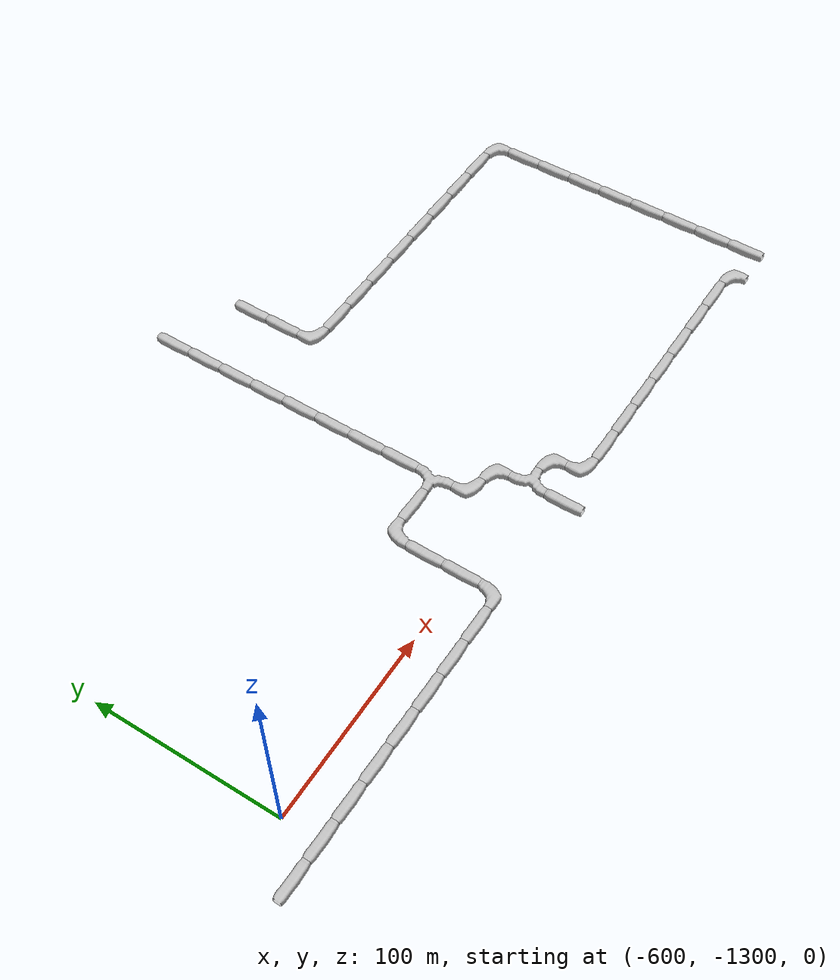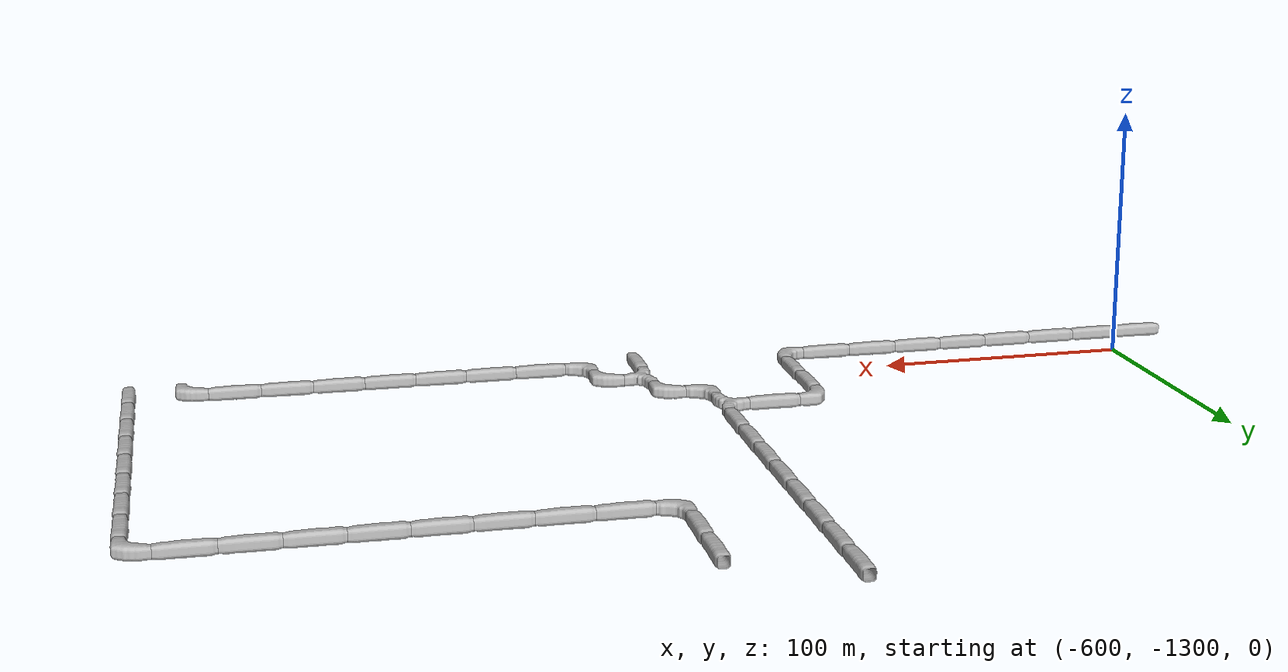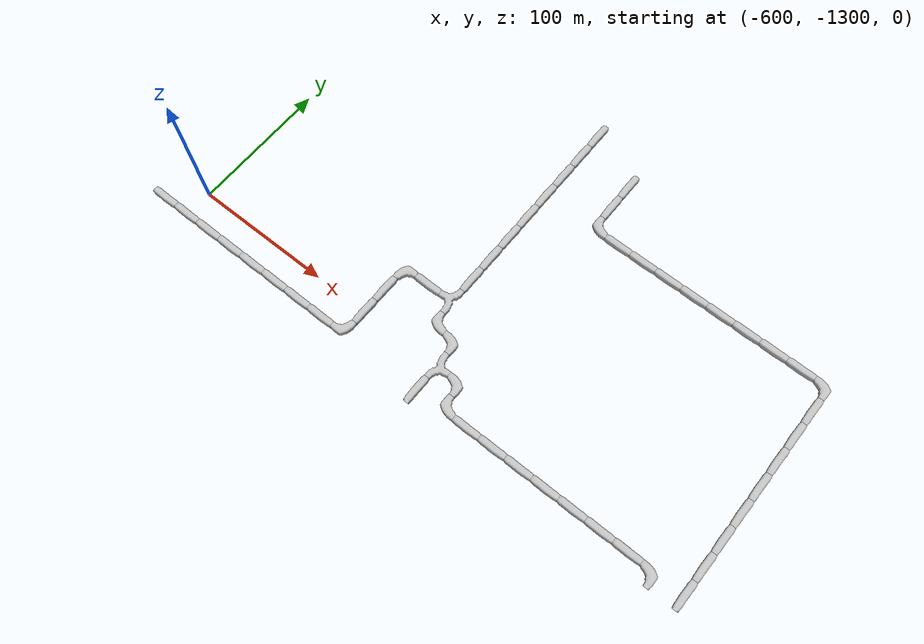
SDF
<sdf version="1.6">
 <world name="cave_32000_4">
  <include>
   <static>true</static>
   <name>cave_-11_-66</name>
   <pose>-220 -1320 0 0 0 3.141592653589793</pose>
   <uri>model://cave_L_20m</uri>
  </include>
  <include>
   <static>true</static>
   <name>cave_-12_-66</name>
   <pose>-240 -1320 0 0 0 1.5707963267948966</pose>
   <uri>model://cave_straight_20m</uri>
  </include>
  <include>
   <static>true</static>
   <name>cave_-13_-66</name>
   <pose>-260 -1320 0 0 0 1.5707963267948966</pose>
   <uri>model://cave_straight_20m</uri>
  </include>
  <include>
   <static>true</static>
   <name>cave_-14_-66</name>
   <pose>-280 -1320 0 0 0 1.5707963267948966</pose>
   <uri>model://cave_straight_20m</uri>
  </include>
  <include>
   <static>true</static>
   <name>cave_-15_-66</name>
   <pose>-300 -1320 0 0 0 1.5707963267948966</pose>
   <uri>model://cave_straight_20m</uri>
  </include>
  <include>
   <static>true</static>
   <name>cave_-16_-66</name>
   <pose>-320 -1320 0 0 0 1.5707963267948966</pose>
   <uri>model://cave_straight_20m</uri>
  </include>
  <include>
   <static>true</static>
   <name>cave_-17_-66</name>
   <pose>-340 -1320 0 0 0 1.5707963267948966</pose>
   <uri>model://cave_straight_20m</uri>
  </include>
  <include>
   <static>true</static>
   <name>cave_-18_-66</name>
   <pose>-360 -1320 0 0 0 1.5707963267948966</pose>
   <uri>model://cave_straight_20m</uri>
  </include>
  <include>
   <static>true</static>
   <name>cave_-19_-66</name>
   <pose>-380 -1320 0 0 0 0.0</pose>
   <uri>model://cave_L_20m</uri>
  </include>
  <include>
   <static>true</static>
   <name>cave_-19_-65</name>
   <pose>-380 -1300 0 0 0 3.141592653589793</pose>
   <uri>model://cave_L_20m</uri>
  </include>
  <include>
   <static>true</static>
   <name>cave_-20_-65</name>
   <pose>-400 -1300 0 0 0 -1.5707963267948966</pose>
   <uri>model://cave_3way_20m</uri>
  </include>
  <include>
   <static>true</static>
   <name>cave_-20_-66</name>
   <pose>-400 -1320 0 0 0 0.0</pose>
   <uri>model://cave_straight_20m</uri>
  </include>
  <include>
   <static>true</static>
   <name>cave_-20_-64</name>
   <pose>-400 -1280 0 0 0 3.141592653589793</pose>
   <uri>model://cave_L_20m</uri>
  </include>
  <include>
   <static>true</static>
   <name>cave_-21_-64</name>
   <pose>-420 -1280 0 0 0 0.0</pose>
   <uri>model://cave_L_20m</uri>
  </include>
  <include>
   <static>true</static>
   <name>cave_-21_-63</name>
   <pose>-420 -1260 0 0 0 1.5707963267948966</pose>
   <uri>model://cave_3way_20m</uri>
  </include>
  <include>
   <static>true</static>
   <name>cave_-22_-63</name>
   <pose>-440 -1260 0 0 0 1.5707963267948966</pose>
   <uri>model://cave_straight_20m</uri>
  </include>
  <include>
   <static>true</static>
   <name>cave_-23_-63</name>
   <pose>-460 -1260 0 0 0 -1.5707963267948966</pose>
   <uri>model://cave_L_20m</uri>
  </include>
  <include>
   <static>true</static>
   <name>cave_-23_-64</name>
   <pose>-460 -1280 0 0 0 0.0</pose>
   <uri>model://cave_straight_20m</uri>
  </include>
  <include>
   <static>true</static>
   <name>cave_-23_-65</name>
   <pose>-460 -1300 0 0 0 0.0</pose>
   <uri>model://cave_straight_20m</uri>
  </include>
  <include>
   <static>true</static>
   <name>cave_-23_-66</name>
   <pose>-460 -1320 0 0 0 1.5707963267948966</pose>
   <uri>model://cave_L_20m</uri>
  </include>
  <include>
   <static>true</static>
   <name>cave_-24_-66</name>
   <pose>-480 -1320 0 0 0 1.5707963267948966</pose>
   <uri>model://cave_straight_20m</uri>
  </include>
  <include>
   <static>true</static>
   <name>cave_-25_-66</name>
   <pose>-500 -1320 0 0 0 1.5707963267948966</pose>
   <uri>model://cave_straight_20m</uri>
  </include>
  <include>
   <static>true</static>
   <name>cave_-26_-66</name>
   <pose>-520 -1320 0 0 0 1.5707963267948966</pose>
   <uri>model://cave_straight_20m</uri>
  </include>
  <include>
   <static>true</static>
   <name>cave_-27_-66</name>
   <pose>-540 -1320 0 0 0 1.5707963267948966</pose>
   <uri>model://cave_straight_20m</uri>
  </include>
  <include>
   <static>true</static>
   <name>cave_-28_-66</name>
   <pose>-560 -1320 0 0 0 1.5707963267948966</pose>
   <uri>model://cave_straight_20m</uri>
  </include>
  <include>
   <static>true</static>
   <name>cave_-29_-66</name>
   <pose>-580 -1320 0 0 0 1.5707963267948966</pose>
   <uri>model://cave_straight_20m</uri>
  </include>
  <include>
   <static>true</static>
   <name>cave_-30_-66</name>
   <pose>-600 -1320 0 0 0 1.5707963267948966</pose>
   <uri>model://cave_straight_20m</uri>
  </include>
  <include>
   <static>true</static>
   <name>cave_-31_-66</name>
   <pose>-620 -1320 0 0 0 1.5707963267948966</pose>
   <uri>model://cave_straight_20m</uri>
  </include>
  <include>
   <static>true</static>
   <name>cave_-21_-62</name>
   <pose>-420 -1240 0 0 0 0.0</pose>
   <uri>model://cave_straight_20m</uri>
  </include>
  <include>
   <static>true</static>
   <name>cave_-21_-61</name>
   <pose>-420 -1220 0 0 0 0.0</pose>
   <uri>model://cave_straight_20m</uri>
  </include>
  <include>
   <static>true</static>
   <name>cave_-21_-60</name>
   <pose>-420 -1200 0 0 0 0.0</pose>
   <uri>model://cave_straight_20m</uri>
  </include>
  <include>
   <static>true</static>
   <name>cave_-21_-59</name>
   <pose>-420 -1180 0 0 0 0.0</pose>
   <uri>model://cave_straight_20m</uri>
  </include>
  <include>
   <static>true</static>
   <name>cave_-21_-58</name>
   <pose>-420 -1160 0 0 0 0.0</pose>
   <uri>model://cave_straight_20m</uri>
  </include>
  <include>
   <static>true</static>
   <name>cave_-21_-57</name>
   <pose>-420 -1140 0 0 0 0.0</pose>
   <uri>model://cave_straight_20m</uri>
  </include>
  <include>
   <static>true</static>
   <name>cave_-21_-56</name>
   <pose>-420 -1120 0 0 0 0.0</pose>
   <uri>model://cave_straight_20m</uri>
  </include>
  <include>
   <static>true</static>
   <name>cave_-21_-55</name>
   <pose>-420 -1100 0 0 0 0.0</pose>
   <uri>model://cave_straight_20m</uri>
  </include>
  <include>
   <static>true</static>
   <name>cave_-10_-66</name>
   <pose>-200 -1320 0 0 0 0.0</pose>
   <uri>model://cave_straight_20m</uri>
  </include>
  <include>
   <static>true</static>
   <name>cave_-10_-65</name>
   <pose>-200 -1300 0 0 0 0.0</pose>
   <uri>model://cave_straight_20m</uri>
  </include>
  <include>
   <static>true</static>
   <name>cave_-10_-64</name>
   <pose>-200 -1280 0 0 0 0.0</pose>
   <uri>model://cave_straight_20m</uri>
  </include>
  <include>
   <static>true</static>
   <name>cave_-10_-63</name>
   <pose>-200 -1260 0 0 0 0.0</pose>
   <uri>model://cave_straight_20m</uri>
  </include>
  <include>
   <static>true</static>
   <name>cave_-10_-62</name>
   <pose>-200 -1240 0 0 0 0.0</pose>
   <uri>model://cave_straight_20m</uri>
  </include>
  <include>
   <static>true</static>
   <name>cave_-10_-61</name>
   <pose>-200 -1220 0 0 0 0.0</pose>
   <uri>model://cave_straight_20m</uri>
  </include>
  <include>
   <static>true</static>
   <name>cave_-10_-60</name>
   <pose>-200 -1200 0 0 0 0.0</pose>
   <uri>model://cave_straight_20m</uri>
  </include>
  <include>
   <static>true</static>
   <name>cave_-10_-59</name>
   <pose>-200 -1180 0 0 0 0.0</pose>
   <uri>model://cave_straight_20m</uri>
  </include>
  <include>
   <static>true</static>
   <name>cave_-10_-58</name>
   <pose>-200 -1160 0 0 0 3.141592653589793</pose>
   <uri>model://cave_L_20m</uri>
  </include>
  <include>
   <static>true</static>
   <name>cave_-11_-58</name>
   <pose>-220 -1160 0 0 0 1.5707963267948966</pose>
   <uri>model://cave_straight_20m</uri>
  </include>
  <include>
   <static>true</static>
   <name>cave_-12_-58</name>
   <pose>-240 -1160 0 0 0 1.5707963267948966</pose>
   <uri>model://cave_straight_20m</uri>
  </include>
  <include>
   <static>true</static>
   <name>cave_-13_-58</name>
   <pose>-260 -1160 0 0 0 1.5707963267948966</pose>
   <uri>model://cave_straight_20m</uri>
  </include>
  <include>
   <static>true</static>
   <name>cave_-14_-58</name>
   <pose>-280 -1160 0 0 0 1.5707963267948966</pose>
   <uri>model://cave_straight_20m</uri>
  </include>
  <include>
   <static>true</static>
   <name>cave_-15_-58</name>
   <pose>-300 -1160 0 0 0 1.5707963267948966</pose>
   <uri>model://cave_straight_20m</uri>
  </include>
  <include>
   <static>true</static>
   <name>cave_-16_-58</name>
   <pose>-320 -1160 0 0 0 1.5707963267948966</pose>
   <uri>model://cave_straight_20m</uri>
  </include>
  <include>
   <static>true</static>
   <name>cave_-17_-58</name>
   <pose>-340 -1160 0 0 0 1.5707963267948966</pose>
   <uri>model://cave_straight_20m</uri>
  </include>
  <include>
   <static>true</static>
   <name>cave_-18_-58</name>
   <pose>-360 -1160 0 0 0 1.5707963267948966</pose>
   <uri>model://cave_straight_20m</uri>
  </include>
  <include>
   <static>true</static>
   <name>cave_-19_-58</name>
   <pose>-380 -1160 0 0 0 0.0</pose>
   <uri>model://cave_L_20m</uri>
  </include>
  <include>
   <static>true</static>
   <name>cave_-19_-57</name>
   <pose>-380 -1140 0 0 0 0.0</pose>
   <uri>model://cave_straight_20m</uri>
  </include>
  <include>
   <static>true</static>
   <name>cave_-19_-56</name>
   <pose>-380 -1120 0 0 0 0.0</pose>
   <uri>model://cave_straight_20m</uri>
  </include>
 </world>
</sdf>
